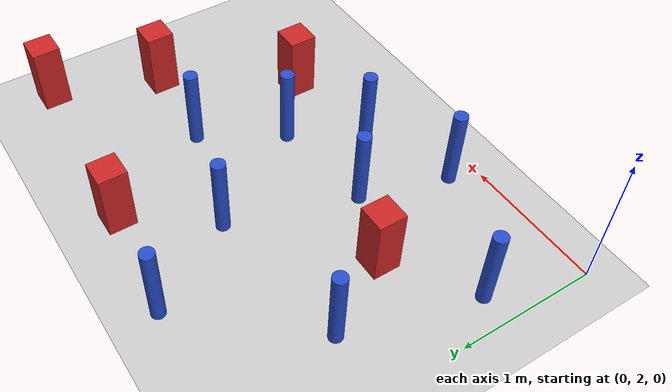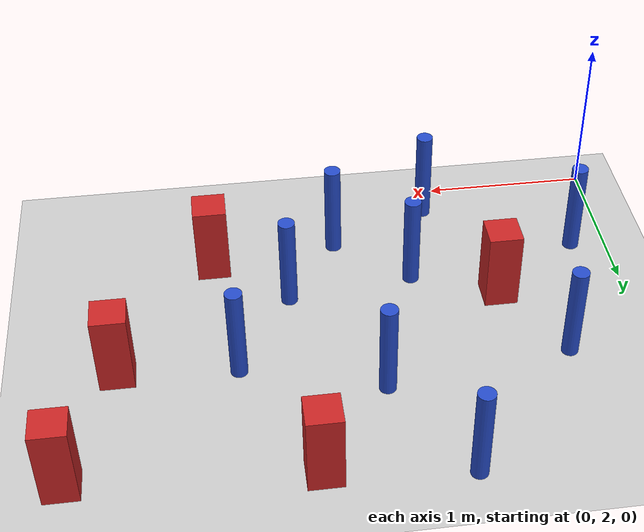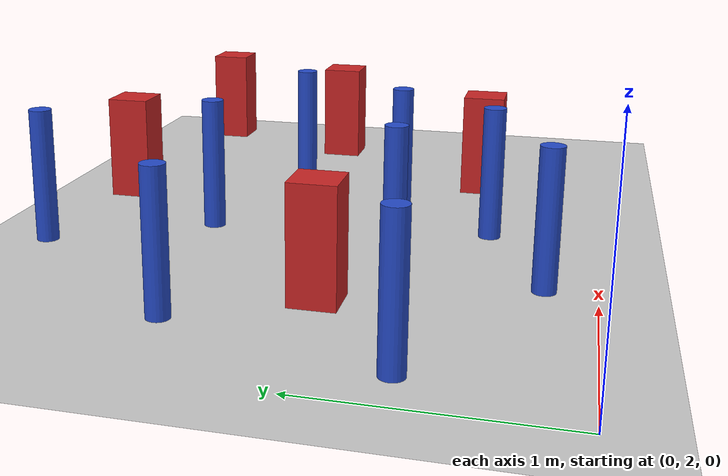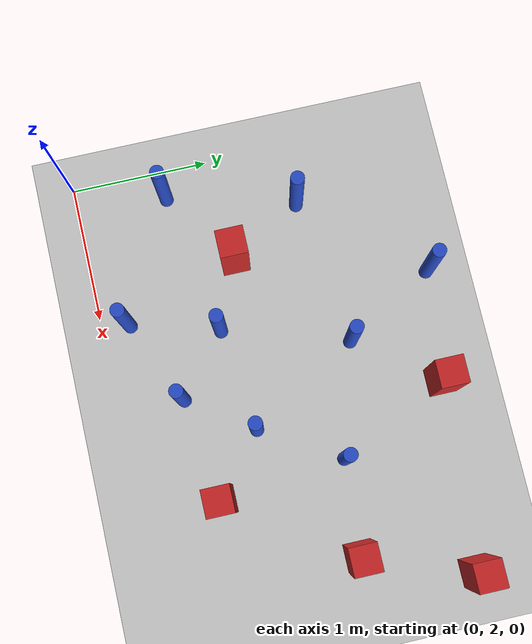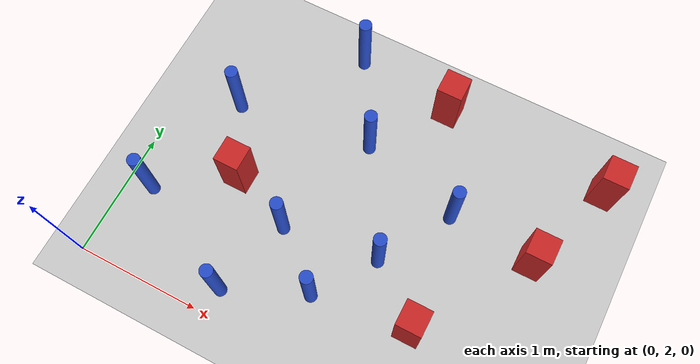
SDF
<sdf version="1.6">
 <world name="default">
  <model name="ground_plane">
   <static>1</static>
   <link name="link">
    <collision name="collision">
     <geometry><plane><normal>0 0 1</normal><size>100 100</size></plane></geometry>
     <surface><friction><ode><mu>100</mu><mu2>50</mu2></ode></friction></surface>
    </collision>
    <visual name="visual">
     <cast_shadows>0</cast_shadows>
     <geometry><plane><normal>0 0 1</normal><size>100 100</size></plane></geometry>
     <material>
      <ambient>1.0 1.0 1.0 1.0</ambient>
      <diffuse>0.8 0.8 0.8 1.0</diffuse>
      <specular>0.01 0.01 0.01 1.000000</specular>
     </material>
    </visual>
   </link>
  </model>
  <model name="square_post_obstacle8">
   <static>true</static>
   <pose>0.779400273148 3.0589968224 -6.11067671241e-07 -5.50515727128e-06 -8.79689657224e-07 2.37013304536e-05</pose>
   <link name="link">
    <pose>0 0 0.25 0 -0 0</pose>
    <inertial>
     <mass>100</mass>
     <inertia>
      <ixx>0.166667</ixx>
      <ixy>0</ixy>
      <ixz>0</ixz>
      <iyy>0.166667</iyy>
      <iyz>0</iyz>
      <izz>0.166667</izz>
     </inertia>
    </inertial>
    <collision name="collision"><geometry><box><size>.2 .2 .5</size></box></geometry></collision>
    <visual name="visual">
     <geometry><box><size>.2 .2 .5</size></box></geometry>
     <material>
      <script><name>Gazebo/Red</name><uri>file://media/materials/scripts/gazebo.material</uri></script>
     </material>
    </visual>
   </link>
  </model>
  <model name="square_post_obstacle16">
   <static>true</static>
   <pose>1.98771499368 4.31782590708 -6.11067671241e-07 -5.50515727128e-06 -8.79689657224e-07 2.37013304536e-05</pose>
   <link name="link">
    <pose>0 0 0.25 0 -0 0</pose>
    <inertial>
     <mass>100</mass>
     <inertia>
      <ixx>0.166667</ixx>
      <ixy>0</ixy>
      <ixz>0</ixz>
      <iyy>0.166667</iyy>
      <iyz>0</iyz>
      <izz>0.166667</izz>
     </inertia>
    </inertial>
    <collision name="collision"><geometry><box><size>.2 .2 .5</size></box></geometry></collision>
    <visual name="visual">
     <geometry><box><size>.2 .2 .5</size></box></geometry>
     <material>
      <script><name>Gazebo/Red</name><uri>file://media/materials/scripts/gazebo.material</uri></script>
     </material>
    </visual>
   </link>
  </model>
  <model name="pole_obstacle25">
   <static>true</static>
   <pose>0.217772966762 2.66445412357 -9.4761961606e-06 5.49618799729e-07 2.36310413995e-07 -1.55090534826e-07</pose>
   <link name="link">
    <pose>0 0 0.3 0 -0 0</pose>
    <inertial>
     <mass>1</mass>
     <inertia><ixx>0.145833</ixx><ixy>0</ixy><ixz>0</ixz><iyy>0.145833</iyy><iyz>0</iyz><izz>0.125</izz></inertia>
    </inertial>
    <collision name="collision">
     <geometry><cylinder><radius>0.05</radius><length>.6</length></cylinder></geometry>
    </collision>
    <visual name="visual">
     <geometry><cylinder><radius>0.05</radius><length>.6</length></cylinder></geometry>
     <material>
      <script><name>Gazebo/Blue</name><uri>file://media/materials/scripts/gazebo.material</uri></script>
     </material>
    </visual>
   </link>
  </model>
  <model name="pole_obstacle39">
   <static>true</static>
   <pose>1.72063128281 2.4826615082 -9.47619616065e-06 5.49618799737e-07 2.36310414062e-07 -1.55090534798e-07</pose>
   <link name="link">
    <pose>0 0 0.3 0 -0 0</pose>
    <inertial>
     <mass>1</mass>
     <inertia><ixx>0.145833</ixx><ixy>0</ixy><ixz>0</ixz><iyy>0.145833</iyy><iyz>0</iyz><izz>0.125</izz></inertia>
    </inertial>
    <collision name="collision">
     <geometry><cylinder><radius>0.05</radius><length>.6</length></cylinder></geometry>
    </collision>
    <visual name="visual">
     <geometry><cylinder><radius>0.05</radius><length>.6</length></cylinder></geometry>
     <material>
      <script><name>Gazebo/Blue</name><uri>file://media/materials/scripts/gazebo.material</uri></script>
     </material>
    </visual>
   </link>
  </model>
  <model name="square_post_obstacle44">
   <static>true</static>
   <pose>3.06991139394 3.45622264912 -6.11067671241e-07 -5.50515727128e-06 -8.79689657224e-07 2.37013304536e-05</pose>
   <link name="link">
    <pose>0 0 0.25 0 -0 0</pose>
    <inertial>
     <mass>100</mass>
     <inertia>
      <ixx>0.166667</ixx>
      <ixy>0</ixy>
      <ixz>0</ixz>
      <iyy>0.166667</iyy>
      <iyz>0</iyz>
      <izz>0.166667</izz>
     </inertia>
    </inertial>
    <collision name="collision"><geometry><box><size>.2 .2 .5</size></box></geometry></collision>
    <visual name="visual">
     <geometry><box><size>.2 .2 .5</size></box></geometry>
     <material>
      <script><name>Gazebo/Red</name><uri>file://media/materials/scripts/gazebo.material</uri></script>
     </material>
    </visual>
   </link>
  </model>
  <model name="pole_obstacle54">
   <static>true</static>
   <pose>1.56436303592 3.74919223554 -9.47619616065e-06 5.49618799737e-07 2.36310414062e-07 -1.55090534798e-07</pose>
   <link name="link">
    <pose>0 0 0.3 0 -0 0</pose>
    <inertial>
     <mass>1</mass>
     <inertia><ixx>0.145833</ixx><ixy>0</ixy><ixz>0</ixz><iyy>0.145833</iyy><iyz>0</iyz><izz>0.125</izz></inertia>
    </inertial>
    <collision name="collision">
     <geometry><cylinder><radius>0.05</radius><length>.6</length></cylinder></geometry>
    </collision>
    <visual name="visual">
     <geometry><cylinder><radius>0.05</radius><length>.6</length></cylinder></geometry>
     <material>
      <script><name>Gazebo/Blue</name><uri>file://media/materials/scripts/gazebo.material</uri></script>
     </material>
    </visual>
   </link>
  </model>
  <model name="pole_obstacle59">
   <static>true</static>
   <pose>1.17912527791 4.41500066654 -9.47619616065e-06 5.49618799737e-07 2.36310414061e-07 -1.550905348e-07</pose>
   <link name="link">
    <pose>0 0 0.3 0 -0 0</pose>
    <inertial>
     <mass>1</mass>
     <inertia><ixx>0.145833</ixx><ixy>0</ixy><ixz>0</ixz><iyy>0.145833</iyy><iyz>0</iyz><izz>0.125</izz></inertia>
    </inertial>
    <collision name="collision">
     <geometry><cylinder><radius>0.05</radius><length>.6</length></cylinder></geometry>
    </collision>
    <visual name="visual">
     <geometry><cylinder><radius>0.05</radius><length>.6</length></cylinder></geometry>
     <material>
      <script><name>Gazebo/Blue</name><uri>file://media/materials/scripts/gazebo.material</uri></script>
     </material>
    </visual>
   </link>
  </model>
  <model name="pole_obstacle79">
   <static>true</static>
   <pose>2.38351783101 3.51050894018 -9.47619616065e-06 5.49618799737e-07 2.36310414051e-07 -1.55090534807e-07</pose>
   <link name="link">
    <pose>0 0 0.3 0 -0 0</pose>
    <inertial>
     <mass>1</mass>
     <inertia><ixx>0.145833</ixx><ixy>0</ixy><ixz>0</ixz><iyy>0.145833</iyy><iyz>0</iyz><izz>0.125</izz></inertia>
    </inertial>
    <collision name="collision">
     <geometry><cylinder><radius>0.05</radius><length>.6</length></cylinder></geometry>
    </collision>
    <visual name="visual">
     <geometry><cylinder><radius>0.05</radius><length>.6</length></cylinder></geometry>
     <material>
      <script><name>Gazebo/Blue</name><uri>file://media/materials/scripts/gazebo.material</uri></script>
     </material>
    </visual>
   </link>
  </model>
  <model name="pole_obstacle87">
   <static>true</static>
   <pose>2.04370083396 2.94674760831 -9.47619616065e-06 5.49618799738e-07 2.36310414047e-07 -1.55090534808e-07</pose>
   <link name="link">
    <pose>0 0 0.3 0 -0 0</pose>
    <inertial>
     <mass>1</mass>
     <inertia><ixx>0.145833</ixx><ixy>0</ixy><ixz>0</ixz><iyy>0.145833</iyy><iyz>0</iyz><izz>0.125</izz></inertia>
    </inertial>
    <collision name="collision">
     <geometry><cylinder><radius>0.05</radius><length>.6</length></cylinder></geometry>
    </collision>
    <visual name="visual">
     <geometry><cylinder><radius>0.05</radius><length>.6</length></cylinder></geometry>
     <material>
      <script><name>Gazebo/Blue</name><uri>file://media/materials/scripts/gazebo.material</uri></script>
     </material>
    </visual>
   </link>
  </model>
  <model name="pole_obstacle93">
   <static>true</static>
   <pose>1.10042655831 2.21123283406 -9.47619616065e-06 5.49618799737e-07 2.36310414062e-07 -1.55090534798e-07</pose>
   <link name="link">
    <pose>0 0 0.3 0 -0 0</pose>
    <inertial>
     <mass>1</mass>
     <inertia><ixx>0.145833</ixx><ixy>0</ixy><ixz>0</ixz><iyy>0.145833</iyy><iyz>0</iyz><izz>0.125</izz></inertia>
    </inertial>
    <collision name="collision">
     <geometry><cylinder><radius>0.05</radius><length>.6</length></cylinder></geometry>
    </collision>
    <visual name="visual">
     <geometry><cylinder><radius>0.05</radius><length>.6</length></cylinder></geometry>
     <material>
      <script><name>Gazebo/Blue</name><uri>file://media/materials/scripts/gazebo.material</uri></script>
     </material>
    </visual>
   </link>
  </model>
  <model name="square_post_obstacle85">
   <static>true</static>
   <pose>3.34941830353 4.22500570156 -6.11067671241e-07 -5.50515727128e-06 -8.79689657224e-07 2.37013304536e-05</pose>
   <link name="link">
    <pose>0 0 0.25 0 -0 0</pose>
    <inertial>
     <mass>100</mass>
     <inertia>
      <ixx>0.166667</ixx>
      <ixy>0</ixy>
      <ixz>0</ixz>
      <iyy>0.166667</iyy>
      <iyz>0</iyz>
      <izz>0.166667</izz>
     </inertia>
    </inertial>
    <collision name="collision"><geometry><box><size>.2 .2 .5</size></box></geometry></collision>
    <visual name="visual">
     <geometry><box><size>.2 .2 .5</size></box></geometry>
     <material>
      <script><name>Gazebo/Red</name><uri>file://media/materials/scripts/gazebo.material</uri></script>
     </material>
    </visual>
   </link>
  </model>
  <model name="square_post_obstacle121">
   <static>true</static>
   <pose>2.48373517905 2.59141162242 -6.11067671241e-07 -5.50515727128e-06 -8.79689657224e-07 2.37013304536e-05</pose>
   <link name="link">
    <pose>0 0 0.25 0 -0 0</pose>
    <inertial>
     <mass>100</mass>
     <inertia>
      <ixx>0.166667</ixx>
      <ixy>0</ixy>
      <ixz>0</ixz>
      <iyy>0.166667</iyy>
      <iyz>0</iyz>
      <izz>0.166667</izz>
     </inertia>
    </inertial>
    <collision name="collision"><geometry><box><size>.2 .2 .5</size></box></geometry></collision>
    <visual name="visual">
     <geometry><box><size>.2 .2 .5</size></box></geometry>
     <material>
      <script><name>Gazebo/Red</name><uri>file://media/materials/scripts/gazebo.material</uri></script>
     </material>
    </visual>
   </link>
  </model>
  <model name="pole_obstacle141">
   <static>true</static>
   <pose>1.28329032788 2.84770055174 -9.47619616065e-06 5.49618799737e-07 2.36310414062e-07 -1.55090534798e-07</pose>
   <link name="link">
    <pose>0 0 0.3 0 -0 0</pose>
    <inertial>
     <mass>1</mass>
     <inertia><ixx>0.145833</ixx><ixy>0</ixy><ixz>0</ixz><iyy>0.145833</iyy><iyz>0</iyz><izz>0.125</izz></inertia>
    </inertial>
    <collision name="collision">
     <geometry><cylinder><radius>0.05</radius><length>.6</length></cylinder></geometry>
    </collision>
    <visual name="visual">
     <geometry><cylinder><radius>0.05</radius><length>.6</length></cylinder></geometry>
     <material>
      <script><name>Gazebo/Blue</name><uri>file://media/materials/scripts/gazebo.material</uri></script>
     </material>
    </visual>
   </link>
  </model>
  <model name="pole_obstacle171">
   <static>true</static>
   <pose>0.471636547954 3.59474494561 -9.47619616065e-06 5.49618799738e-07 2.36310414066e-07 -1.55090534797e-07</pose>
   <link name="link">
    <pose>0 0 0.3 0 -0 0</pose>
    <inertial>
     <mass>1</mass>
     <inertia><ixx>0.145833</ixx><ixy>0</ixy><ixz>0</ixz><iyy>0.145833</iyy><iyz>0</iyz><izz>0.125</izz></inertia>
    </inertial>
    <collision name="collision">
     <geometry><cylinder><radius>0.05</radius><length>.6</length></cylinder></geometry>
    </collision>
    <visual name="visual">
     <geometry><cylinder><radius>0.05</radius><length>.6</length></cylinder></geometry>
     <material>
      <script><name>Gazebo/Blue</name><uri>file://media/materials/scripts/gazebo.material</uri></script>
     </material>
    </visual>
   </link>
  </model>
 </world>
</sdf>
